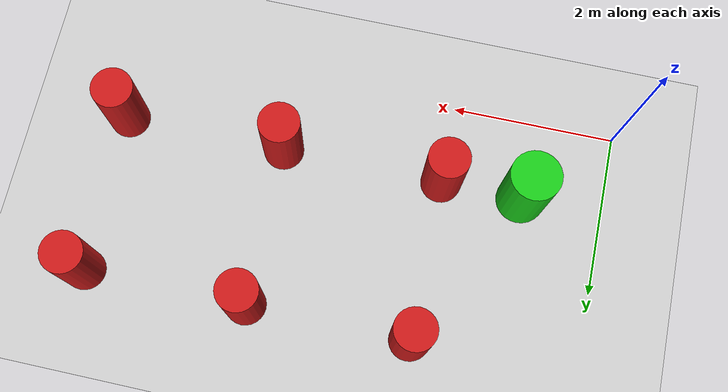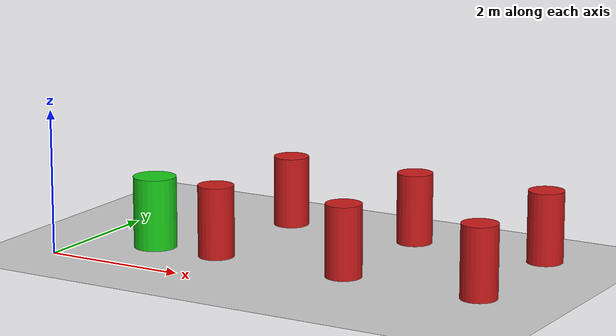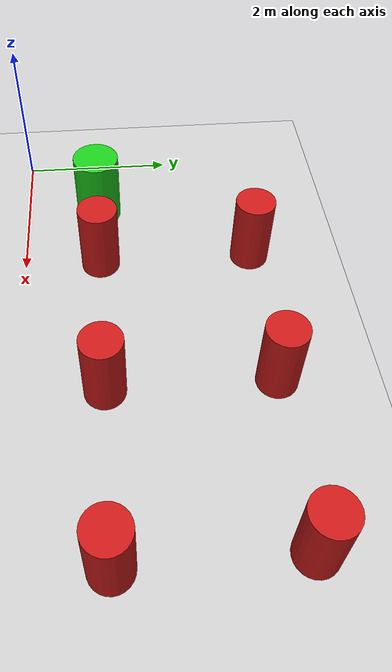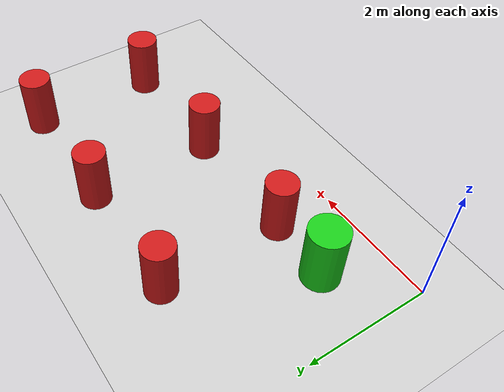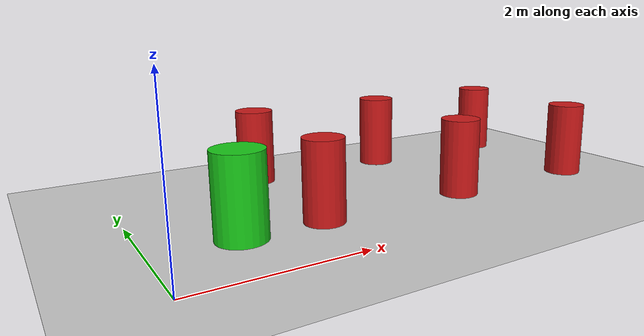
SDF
<sdf version="1.7">
 <world name="default">
  <model name="ground_plane">
   <static>true</static>
   <link name="link">
    <collision name="collision">
     <geometry><plane><normal>0 0 1</normal><size>100 100</size></plane></geometry>
    </collision>
    <visual name="visual">
     <geometry><plane><normal>0 0 1</normal><size>100 100</size></plane></geometry>
     <material>
      <script><uri>file://media/materials/scripts/gazebo.material</uri><name>Gazebo/Grey</name></script>
     </material>
    </visual>
   </link>
  </model>
  <light name="sun" type="directional">
   <pose>0 0 10 0 0 0</pose>
   <diffuse>0.8 0.8 0.8 1</diffuse>
   <specular>0.2 0.2 0.2 1</specular>
   <direction>-0.5 0.1 -0.9</direction>
  </light>
  <model name="moving_cylinder">
   <pose>1 1 0.5 0 0 0</pose>
   <static>false</static>
   <link name="body">
    <inertial><mass>1</mass></inertial>
    <collision name="col">
     <geometry><cylinder><radius>0.3</radius><length>1.0</length></cylinder></geometry>
    </collision>
    <visual name="vis">
     <geometry><cylinder><radius>0.3</radius><length>1.0</length></cylinder></geometry>
     <material><ambient>0.1 0.8 0.1 1</ambient></material>
    </visual>
   </link>
   <plugin name="path_follower" filename="libcylinder_auto_mover.so">
    <waypoint>1 1</waypoint>
    <waypoint>7 1</waypoint>
    <waypoint>7 3</waypoint>
    <waypoint>1 3</waypoint>
    <waypoint>1 1</waypoint>
    <speed>0.8</speed>
   </plugin>
  </model>
  <model name="obstacle_1">
   <pose>2 1 0.5 0 0 0</pose>
   <static>true</static>
   <link name="link">
    <collision name="col">
     <geometry><cylinder><radius>0.25</radius><length>1</length></cylinder></geometry>
    </collision>
    <visual name="vis">
     <geometry><cylinder><radius>0.25</radius><length>1</length></cylinder></geometry>
     <material><ambient>0.8 0.1 0.1 1</ambient></material>
    </visual>
   </link>
  </model>
  <model name="obstacle_2">
   <pose>4 1 0.5 0 0 0</pose>
   <static>true</static>
   <link name="link">
    <collision name="col">
     <geometry><cylinder><radius>0.25</radius><length>1</length></cylinder></geometry>
    </collision>
    <visual name="vis">
     <geometry><cylinder><radius>0.25</radius><length>1</length></cylinder></geometry>
     <material><ambient>0.8 0.1 0.1 1</ambient></material>
    </visual>
   </link>
  </model>
  <model name="obstacle_3">
   <pose>6 1 0.5 0 0 0</pose>
   <static>true</static>
   <link name="link">
    <collision name="col">
     <geometry><cylinder><radius>0.25</radius><length>1</length></cylinder></geometry>
    </collision>
    <visual name="vis">
     <geometry><cylinder><radius>0.25</radius><length>1</length></cylinder></geometry>
     <material><ambient>0.8 0.1 0.1 1</ambient></material>
    </visual>
   </link>
  </model>
  <model name="obstacle_4">
   <pose>2 3 0.5 0 0 0</pose>
   <static>true</static>
   <link name="link">
    <collision name="col">
     <geometry><cylinder><radius>0.25</radius><length>1</length></cylinder></geometry>
    </collision>
    <visual name="vis">
     <geometry><cylinder><radius>0.25</radius><length>1</length></cylinder></geometry>
     <material><ambient>0.8 0.1 0.1 1</ambient></material>
    </visual>
   </link>
  </model>
  <model name="obstacle_5">
   <pose>4 3 0.5 0 0 0</pose>
   <static>true</static>
   <link name="link">
    <collision name="col">
     <geometry><cylinder><radius>0.25</radius><length>1</length></cylinder></geometry>
    </collision>
    <visual name="vis">
     <geometry><cylinder><radius>0.25</radius><length>1</length></cylinder></geometry>
     <material><ambient>0.8 0.1 0.1 1</ambient></material>
    </visual>
   </link>
  </model>
  <model name="obstacle_6">
   <pose>6 3 0.5 0 0 0</pose>
   <static>true</static>
   <link name="link">
    <collision name="col">
     <geometry><cylinder><radius>0.25</radius><length>1</length></cylinder></geometry>
    </collision>
    <visual name="vis">
     <geometry><cylinder><radius>0.25</radius><length>1</length></cylinder></geometry>
     <material><ambient>0.8 0.1 0.1 1</ambient></material>
    </visual>
   </link>
  </model>
 </world>
</sdf>
